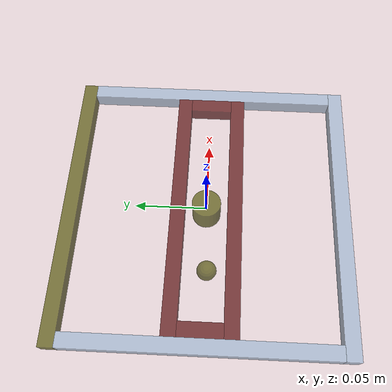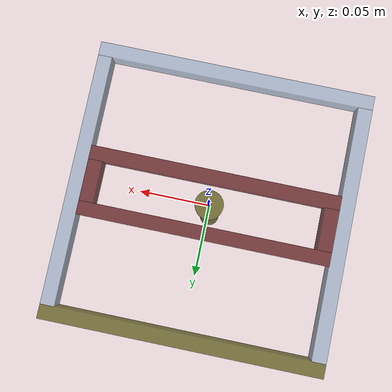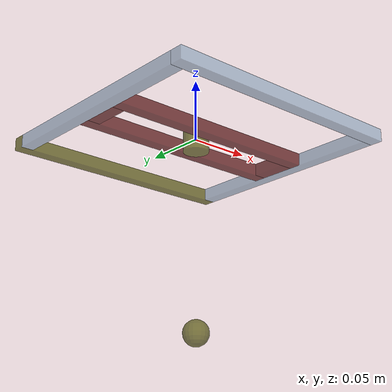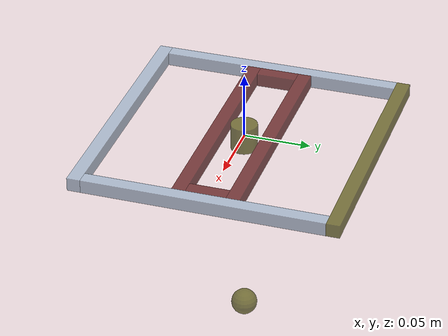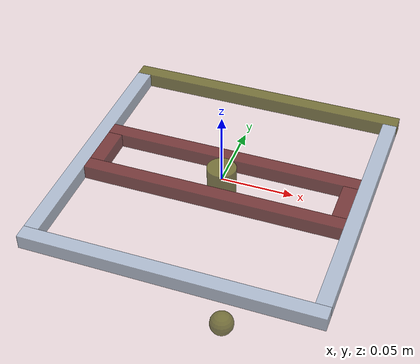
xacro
<?xml version="1.0"?>
<robot xmlns:xacro="http://www.ros.org/wiki/xacro" name="hopper">

  <xacro:macro name="sphere_inertial_with_origin" params="radius mass *origin">
    <inertial>
      <mass value="${mass}" />
      <xacro:insert_block name="origin" />
      <inertia ixx="${0.4 * mass * radius * radius}" ixy="0.0" ixz="0.0"
        iyy="${0.4 * mass * radius * radius}" iyz="0.0"
        izz="${0.4 * mass * radius * radius}" />
    </inertial>
  </xacro:macro>

  <xacro:macro name="sphere_with_origin" params="radius mass color *origin">
    <visual>
            <geometry>
                <sphere  radius="${radius}"/>
            </geometry>
            <xacro:insert_block name="origin" />
            <material name="${color}"/>
    </visual>

    <collision>
          <geometry>
                <sphere  radius="${radius}"/>
          </geometry>
          <xacro:insert_block name="origin" />
    </collision>

    <inertial>
      <mass value="${mass}" />
      <xacro:insert_block name="origin" />
      <inertia ixx="${0.4 * mass * radius * radius}" ixy="0.0" ixz="0.0"
        iyy="${0.4 * mass * radius * radius}" iyz="0.0"
        izz="${0.4 * mass * radius * radius}" />
    </inertial>
  </xacro:macro>

  <xacro:macro name="cylinder_inertial_with_origin" params="radius length mass *origin">
    <inertial>
      <mass value="${mass}" />
      <xacro:insert_block name="origin" />
      <inertia ixx="${0.0833333 * mass * (3 * radius * radius + length * length)}" ixy="0.0" ixz="0.0"
        iyy="${0.0833333 * mass * (3 * radius * radius + length * length)}" iyz="0.0"
        izz="${0.5 * mass * radius * radius}" />
    </inertial>
  </xacro:macro>

  <xacro:macro name="cylinder_with_origin" params="radius length mass color *origin">
     <visual>
            <geometry>
                <cylinder length="${length}" radius="${radius}"/>

            </geometry>
            <xacro:insert_block name="origin" />
            <material name="${color}"/>
     </visual>

     <collision>
            <geometry>
                <cylinder length="${length}" radius="${radius}"/>

            </geometry>
            <xacro:insert_block name="origin" />
     </collision>
    <inertial>
      <mass value="${mass}" />
      <xacro:insert_block name="origin" />
      <inertia ixx="${0.0833333 * mass * (3 * radius * radius + length * length)}" ixy="0.0" ixz="0.0"
        iyy="${0.0833333 * mass * (3 * radius * radius + length * length)}" iyz="0.0"
        izz="${0.5 * mass * radius * radius}" />
    </inertial>
  </xacro:macro>

  <xacro:macro name="box_inertial_with_origin" params="x y z mass *origin">
    <inertial>
      <mass value="${mass}" />
      <xacro:insert_block name="origin" />
      <inertia ixx="${0.0833333 * mass * (y*y + z*z)}" ixy="0.0" ixz="0.0"
        iyy="${0.0833333 * mass * (x*x + z*z)}" iyz="0.0"
        izz="${0.0833333 * mass * (x*x + y*y)}" />
    </inertial>
  </xacro:macro>

  <xacro:macro name="box_with_origin" params="x y z mass color *origin">
    <visual>
            <geometry>
                <box size="${x} ${y} ${z}"/>
            </geometry>
            <xacro:insert_block name="origin" />
             <material name="${color}"/>
    </visual>

    <collision>
        <geometry>
                <box size="${x} ${y} ${z}"/>
        </geometry>
        <xacro:insert_block name="origin" />
    </collision>

    <inertial>
      <mass value="${mass}" />
      <xacro:insert_block name="origin" />
      <inertia ixx="${0.0833333 * mass * (y*y + z*z)}" ixy="0.0" ixz="0.0"
        iyy="${0.0833333 * mass * (x*x + z*z)}" iyz="0.0"
        izz="${0.0833333 * mass * (x*x + y*y)}" />
    </inertial>
  </xacro:macro>

    <material name="black">
        <color rgba="0.3 0 0 0.7"/>
    </material>
    <material name="blue">
        <color rgba="0.6 0.7 0.8 0.7"/>
    </material>

        <material name="yellow">
        <color rgba="0.3 0.3 0 0.7"/>
    </material>

    <!-- Base Frame of Hopper -->

    <link name="base_link1">
        <xacro:box_with_origin x="0.2" y="0.01" z="0.01" mass="0.15" color="yellow">
            <origin xyz="0 0.095 0"/>
        </xacro:box_with_origin>
    </link>

    <link name="base_link2">
        <xacro:box_with_origin x="0.2" y="0.01" z="0.01" mass="0.15" color="blue">
            <origin xyz="0 -0.095 0"/>
        </xacro:box_with_origin>
    </link>

    <joint name="base1_to_base2" type="fixed">
        <parent link="base_link1"/>
        <child link="base_link2"/>
    </joint>

    <link name="base_link3">
        <xacro:box_with_origin x="0.01" y="0.18" z="0.01" mass="0.15" color="blue">
            <origin xyz="0.095 0 0"/>
        </xacro:box_with_origin>
    </link>

    <joint name="base1_to_base3" type="fixed">
        <parent link="base_link1"/>
        <child link="base_link3"/>
    </joint>

    <link name="base_link4">
        <xacro:box_with_origin x="0.01" y="0.18" z="0.01" mass="0.15" color="blue">
            <origin xyz="-0.095 0 0"/>
        </xacro:box_with_origin>
    </link>

    <joint name="base1_to_base4" type="fixed">
        <parent link="base_link1"/>
        <child link="base_link4"/>
    </joint>

     <!-- Mid Frame of Hopper -->

    <link name="mid_link1">
        <xacro:box_with_origin x="0.01" y="0.03" z="0.01" mass="0.15" color="black">
            <origin xyz="0.085 0 0"/>
        </xacro:box_with_origin>
    </link>

     <joint name="base_mid_joint" type="revolute">
        <axis xyz="-1 0 0"/>
        <limit effort="1000.0" lower="-0.548" upper="0.548" velocity="5"/>
        <origin rpy="0 0 0" xyz="0 0 0"/>
        <parent link="base_link3"/>
        <child link="mid_link1"/>
    </joint>

    <link name="mid_link2">
        <xacro:box_with_origin x="0.01" y="0.03" z="0.01" mass="0.15" color="black">
            <origin xyz="-0.085 0 0"/>
        </xacro:box_with_origin>
    </link>

     <joint name="mid1_mid2_joint" type="fixed">
        <parent link="mid_link1"/>
        <child link="mid_link2"/>
    </joint>

    <link name="mid_link3">
        <xacro:box_with_origin x="0.18" y="0.01" z="0.01" mass="0.15" color="black">
            <origin xyz="0 0.02 0"/>
        </xacro:box_with_origin>
    </link>

     <joint name="mid1_mid3_joint" type="fixed">
        <parent link="mid_link1"/>
        <child link="mid_link3"/>
    </joint>

    <link name="mid_link4">
        <xacro:box_with_origin x="0.18" y="0.01" z="0.01" mass="0.15" color="black">
            <origin xyz="0 -0.02 0"/>
        </xacro:box_with_origin>
    </link>

     <joint name="mid1_mid4_joint" type="fixed">
        <parent link="mid_link1"/>
        <child link="mid_link4"/>
    </joint>

    <link name="cylinder">
        <xacro:cylinder_with_origin radius="0.01" length="0.02" mass="0.1" color="yellow">
            <origin xyz="0 0 0"/>
        </xacro:cylinder_with_origin>
    </link>

    <joint name="mid_cylinder_joint" type="revolute">
        <axis xyz="0 -1 0"/>
        <limit effort="1000.0" lower="-0.548" upper="0.548" velocity="5"/>
        <origin rpy="0 0 0" xyz="0 0 0"/>
        <parent link="mid_link3"/>
        <child link="cylinder"/>
    </joint>

    <link name="leg_tip">
        <xacro:sphere_with_origin radius="0.01" mass="0.02" color="yellow">
            <origin xyz="0 0 0"/>
        </xacro:sphere_with_origin>
    </link>

    <joint name="cylinder_tip_joint" type="prismatic">
        <axis xyz="0 0 1"/>
        <limit effort="1000.0" lower="-0.01" upper="0.075" velocity="0.5"/>
        <origin rpy="0 0 0" xyz="0 0 -0.15"/>
        <parent link="cylinder"/>
        <child link="leg_tip"/>

        <dynamics damping = "5"/>

    </joint>

</robot>
